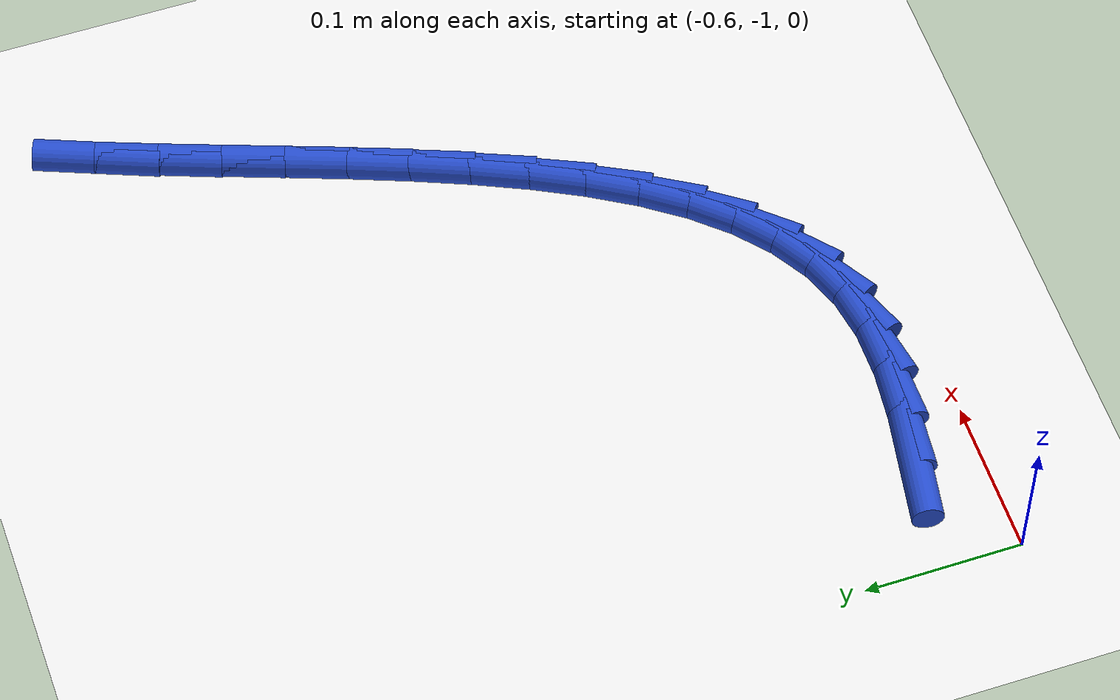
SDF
<sdf version="1.6">
 <world name="default">
  <model name="ground_plane">
   <static>1</static>
   <link name="link">
    <collision name="collision">
     <geometry><plane><normal>0 0 1</normal><size>100 100</size></plane></geometry>
     <surface><friction><ode><mu>100</mu><mu2>50</mu2></ode></friction></surface>
    </collision>
    <visual name="visual">
     <cast_shadows>0</cast_shadows>
     <geometry><plane><normal>0 0 1</normal><size>100 100</size></plane></geometry>
     <material>
      <script><uri>file://media/materials/scripts/gazebo.material</uri><name>Gazebo/WhiteGlow</name></script>
     </material>
    </visual>
   </link>
  </model>
  <model name="line">
   <link name="link_195">
    <pose>-0.5312746231633753 -0.9575635797351565 0.01 0 1.57 -0.17814204256760063</pose>
    <collision name="collision">
     <geometry><cylinder><radius>0.01</radius><length>0.08</length></cylinder></geometry>
    </collision>
    <visual name="visual">
     <material>
      <script><name>Gazebo/Blue</name><uri>file://media/materials/scripts/gazebo.material</uri></script>
     </material>
     <geometry><cylinder><radius>0.01</radius><length>0.08</length></cylinder></geometry>
    </visual>
   </link>
   <link name="link_196">
    <pose>-0.4970488458058978 -0.9637259547614694 0.01 0 1.57 -0.10596870350054247</pose>
    <collision name="collision">
     <geometry><cylinder><radius>0.01</radius><length>0.08</length></cylinder></geometry>
    </collision>
    <visual name="visual">
     <material>
      <script><name>Gazebo/Blue</name><uri>file://media/materials/scripts/gazebo.material</uri></script>
     </material>
     <geometry><cylinder><radius>0.01</radius><length>0.08</length></cylinder></geometry>
    </visual>
   </link>
   <link name="link_197">
    <pose>-0.4641937705695319 -0.967220655381906 0.01 0 1.57 0.0053670857094809165</pose>
    <collision name="collision">
     <geometry><cylinder><radius>0.01</radius><length>0.08</length></cylinder></geometry>
    </collision>
    <visual name="visual">
     <material>
      <script><name>Gazebo/Blue</name><uri>file://media/materials/scripts/gazebo.material</uri></script>
     </material>
     <geometry><cylinder><radius>0.01</radius><length>0.08</length></cylinder></geometry>
    </visual>
   </link>
   <link name="link_198">
    <pose>-0.4331055827692426 -0.9670538008113105 0.01 0 1.57 0.16502392740163072</pose>
    <collision name="collision">
     <geometry><cylinder><radius>0.01</radius><length>0.08</length></cylinder></geometry>
    </collision>
    <visual name="visual">
     <material>
      <script><name>Gazebo/Blue</name><uri>file://media/materials/scripts/gazebo.material</uri></script>
     </material>
     <geometry><cylinder><radius>0.01</radius><length>0.08</length></cylinder></geometry>
    </visual>
   </link>
   <link name="link_199">
    <pose>-0.40417849176624426 -0.9622363277957788 0.01 0 1.57 0.35929419527556994</pose>
    <collision name="collision">
     <geometry><cylinder><radius>0.01</radius><length>0.08</length></cylinder></geometry>
    </collision>
    <visual name="visual">
     <material>
      <script><name>Gazebo/Blue</name><uri>file://media/materials/scripts/gazebo.material</uri></script>
     </material>
     <geometry><cylinder><radius>0.01</radius><length>0.08</length></cylinder></geometry>
    </visual>
   </link>
   <link name="link_200">
    <pose>-0.37761052780842325 -0.9522574732492288 0.01 0 1.57 0.5449691673510262</pose>
    <collision name="collision">
     <geometry><cylinder><radius>0.01</radius><length>0.08</length></cylinder></geometry>
    </collision>
    <visual name="visual">
     <material>
      <script><name>Gazebo/Blue</name><uri>file://media/materials/scripts/gazebo.material</uri></script>
     </material>
     <geometry><cylinder><radius>0.01</radius><length>0.08</length></cylinder></geometry>
    </visual>
   </link>
   <link name="link_201">
    <pose>-0.35323985338865144 -0.9374838600860358 0.01 0 1.57 0.7068268967957444</pose>
    <collision name="collision">
     <geometry><cylinder><radius>0.01</radius><length>0.08</length></cylinder></geometry>
    </collision>
    <visual name="visual">
     <material>
      <script><name>Gazebo/Blue</name><uri>file://media/materials/scripts/gazebo.material</uri></script>
     </material>
     <geometry><cylinder><radius>0.01</radius><length>0.08</length></cylinder></geometry>
    </visual>
   </link>
   <link name="link_202">
    <pose>-0.330866089814845 -0.918376077672562 0.01 0 1.57 0.8405352537742267</pose>
    <collision name="collision">
     <geometry><cylinder><radius>0.01</radius><length>0.08</length></cylinder></geometry>
    </collision>
    <visual name="visual">
     <material>
      <script><name>Gazebo/Blue</name><uri>file://media/materials/scripts/gazebo.material</uri></script>
     </material>
     <geometry><cylinder><radius>0.01</radius><length>0.08</length></cylinder></geometry>
    </visual>
   </link>
   <link name="link_203">
    <pose>-0.31028885839491827 -0.8953947153751693 0.01 0 1.57 0.947343809271546</pose>
    <collision name="collision">
     <geometry><cylinder><radius>0.01</radius><length>0.08</length></cylinder></geometry>
    </collision>
    <visual name="visual">
     <material>
      <script><name>Gazebo/Blue</name><uri>file://media/materials/scripts/gazebo.material</uri></script>
     </material>
     <geometry><cylinder><radius>0.01</radius><length>0.08</length></cylinder></geometry>
    </visual>
   </link>
   <link name="link_204">
    <pose>-0.2913077804367862 -0.8690003625602188 0.01 0 1.57 1.0309470111290688</pose>
    <collision name="collision">
     <geometry><cylinder><radius>0.01</radius><length>0.08</length></cylinder></geometry>
    </collision>
    <visual name="visual">
     <material>
      <script><name>Gazebo/Blue</name><uri>file://media/materials/scripts/gazebo.material</uri></script>
     </material>
     <geometry><cylinder><radius>0.01</radius><length>0.08</length></cylinder></geometry>
    </visual>
   </link>
   <link name="link_205">
    <pose>-0.2737224772483636 -0.8396536085940726 0.01 0 1.57 1.0953935045248442</pose>
    <collision name="collision">
     <geometry><cylinder><radius>0.01</radius><length>0.08</length></cylinder></geometry>
    </collision>
    <visual name="visual">
     <material>
      <script><name>Gazebo/Blue</name><uri>file://media/materials/scripts/gazebo.material</uri></script>
     </material>
     <geometry><cylinder><radius>0.01</radius><length>0.08</length></cylinder></geometry>
    </visual>
   </link>
   <link name="link_206">
    <pose>-0.2573325701375654 -0.807815042843091 0.01 0 1.57 1.1441802983766884</pose>
    <collision name="collision">
     <geometry><cylinder><radius>0.01</radius><length>0.08</length></cylinder></geometry>
    </collision>
    <visual name="visual">
     <material>
      <script><name>Gazebo/Blue</name><uri>file://media/materials/scripts/gazebo.material</uri></script>
     </material>
     <geometry><cylinder><radius>0.01</radius><length>0.08</length></cylinder></geometry>
    </visual>
   </link>
   <link name="link_207">
    <pose>-0.241937680412307 -0.7739452546736381 0.01 0 1.57 1.180017123459925</pose>
    <collision name="collision">
     <geometry><cylinder><radius>0.01</radius><length>0.08</length></cylinder></geometry>
    </collision>
    <visual name="visual">
     <material>
      <script><name>Gazebo/Blue</name><uri>file://media/materials/scripts/gazebo.material</uri></script>
     </material>
     <geometry><cylinder><radius>0.01</radius><length>0.08</length></cylinder></geometry>
    </visual>
   </link>
   <link name="link_208">
    <pose>-0.22733742938050316 -0.7385048334520742 0.01 0 1.57 1.2048595768309425</pose>
    <collision name="collision">
     <geometry><cylinder><radius>0.01</radius><length>0.08</length></cylinder></geometry>
    </collision>
    <visual name="visual">
     <material>
      <script><name>Gazebo/Blue</name><uri>file://media/materials/scripts/gazebo.material</uri></script>
     </material>
     <geometry><cylinder><radius>0.01</radius><length>0.08</length></cylinder></geometry>
    </visual>
   </link>
   <link name="link_209">
    <pose>-0.21333143835006885 -0.7019543685447612 0.01 0 1.57 1.220011878378622</pose>
    <collision name="collision">
     <geometry><cylinder><radius>0.01</radius><length>0.08</length></cylinder></geometry>
    </collision>
    <visual name="visual">
     <material>
      <script><name>Gazebo/Blue</name><uri>file://media/materials/scripts/gazebo.material</uri></script>
     </material>
     <geometry><cylinder><radius>0.01</radius><length>0.08</length></cylinder></geometry>
    </visual>
   </link>
   <link name="link_210">
    <pose>-0.1997193286289185 -0.6647544493180596 0.01 0 1.57 1.2262202747351676</pose>
    <collision name="collision">
     <geometry><cylinder><radius>0.01</radius><length>0.08</length></cylinder></geometry>
    </collision>
    <visual name="visual">
     <material>
      <script><name>Gazebo/Blue</name><uri>file://media/materials/scripts/gazebo.material</uri></script>
     </material>
     <geometry><cylinder><radius>0.01</radius><length>0.08</length></cylinder></geometry>
    </visual>
   </link>
   <link name="link_211">
    <pose>-0.1863007215249679 -0.6273656651383334 0.01 0 1.57 1.2237308234023723</pose>
    <collision name="collision">
     <geometry><cylinder><radius>0.01</radius><length>0.08</length></cylinder></geometry>
    </collision>
    <visual name="visual">
     <material>
      <script><name>Gazebo/Blue</name><uri>file://media/materials/scripts/gazebo.material</uri></script>
     </material>
     <geometry><cylinder><radius>0.01</radius><length>0.08</length></cylinder></geometry>
    </visual>
   </link>
   <link name="link_212">
    <pose>-0.17287523834613164 -0.5902486053719428 0.01 0 1.57 1.2123037921145372</pose>
    <collision name="collision">
     <geometry><cylinder><radius>0.01</radius><length>0.08</length></cylinder></geometry>
    </collision>
    <visual name="visual">
     <material>
      <script><name>Gazebo/Blue</name><uri>file://media/materials/scripts/gazebo.material</uri></script>
     </material>
     <geometry><cylinder><radius>0.01</radius><length>0.08</length></cylinder></geometry>
    </visual>
   </link>
   <link name="link_213">
    <pose>-0.15924250040032462 -0.5538638593852496 0.01 0 1.57 1.1911811525504852</pose>
    <collision name="collision">
     <geometry><cylinder><radius>0.01</radius><length>0.08</length></cylinder></geometry>
    </collision>
    <visual name="visual">
     <material>
      <script><name>Gazebo/Blue</name><uri>file://media/materials/scripts/gazebo.material</uri></script>
     </material>
     <geometry><cylinder><radius>0.01</radius><length>0.08</length></cylinder></geometry>
    </visual>
   </link>
  </model>
 </world>
</sdf>
